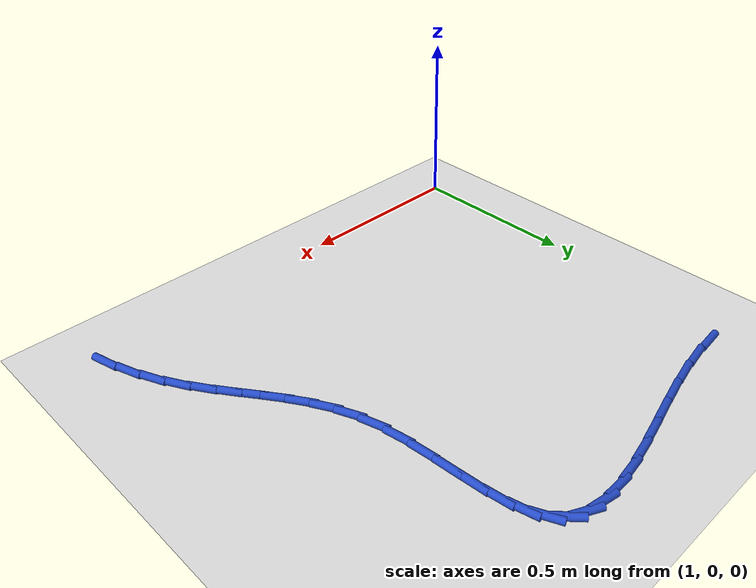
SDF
<sdf version="1.6">
 <world name="default">
  <model name="ground_plane">
   <static>1</static>
   <link name="link">
    <collision name="collision">
     <geometry><plane><normal>0 0 1</normal><size>100 100</size></plane></geometry>
     <surface><friction><ode><mu>100</mu><mu2>50</mu2></ode></friction></surface>
    </collision>
    <visual name="visual">
     <cast_shadows>0</cast_shadows>
     <geometry><plane><normal>0 0 1</normal><size>100 100</size></plane></geometry>
     <material>
      <script><uri>file://media/materials/scripts/gazebo.material</uri><name>Gazebo/WhiteGlow</name></script>
     </material>
    </visual>
   </link>
  </model>
  <model name="line">
   <link name="link_29">
    <pose>1.0898396294880066 1.0580575280648166 0.01 0 1.57 0.08945650275717984</pose>
    <collision name="collision">
     <geometry><cylinder><radius>0.01</radius><length>0.08</length></cylinder></geometry>
    </collision>
    <visual name="visual">
     <material>
      <script><name>Gazebo/Blue</name><uri>file://media/materials/scripts/gazebo.material</uri></script>
     </material>
     <geometry><cylinder><radius>0.01</radius><length>0.08</length></cylinder></geometry>
    </visual>
   </link>
   <link name="link_30">
    <pose>1.1659823152441489 1.0648872142801495 0.01 0 1.57 0.15927276681947872</pose>
    <collision name="collision">
     <geometry><cylinder><radius>0.01</radius><length>0.08</length></cylinder></geometry>
    </collision>
    <visual name="visual">
     <material>
      <script><name>Gazebo/Blue</name><uri>file://media/materials/scripts/gazebo.material</uri></script>
     </material>
     <geometry><cylinder><radius>0.01</radius><length>0.08</length></cylinder></geometry>
    </visual>
   </link>
   <link name="link_31">
    <pose>1.242744580711116 1.0772177960862384 0.01 0 1.57 0.20689623393677498</pose>
    <collision name="collision">
     <geometry><cylinder><radius>0.01</radius><length>0.08</length></cylinder></geometry>
    </collision>
    <visual name="visual">
     <material>
      <script><name>Gazebo/Blue</name><uri>file://media/materials/scripts/gazebo.material</uri></script>
     </material>
     <geometry><cylinder><radius>0.01</radius><length>0.08</length></cylinder></geometry>
    </visual>
   </link>
   <link name="link_32">
    <pose>1.319147715810594 1.0932547996184019 0.01 0 1.57 0.23470440179005142</pose>
    <collision name="collision">
     <geometry><cylinder><radius>0.01</radius><length>0.08</length></cylinder></geometry>
    </collision>
    <visual name="visual">
     <material>
      <script><name>Gazebo/Blue</name><uri>file://media/materials/scripts/gazebo.material</uri></script>
     </material>
     <geometry><cylinder><radius>0.01</radius><length>0.08</length></cylinder></geometry>
    </visual>
   </link>
   <link name="link_33">
    <pose>1.3942130104642674 1.1112037510119592 0.01 0 1.57 0.24341573041456407</pose>
    <collision name="collision">
     <geometry><cylinder><radius>0.01</radius><length>0.08</length></cylinder></geometry>
    </collision>
    <visual name="visual">
     <material>
      <script><name>Gazebo/Blue</name><uri>file://media/materials/scripts/gazebo.material</uri></script>
     </material>
     <geometry><cylinder><radius>0.01</radius><length>0.08</length></cylinder></geometry>
    </visual>
   </link>
   <link name="link_34">
    <pose>1.466961754593823 1.1292701764022304 0.01 0 1.57 0.23173763907962056</pose>
    <collision name="collision">
     <geometry><cylinder><radius>0.01</radius><length>0.08</length></cylinder></geometry>
    </collision>
    <visual name="visual">
     <material>
      <script><name>Gazebo/Blue</name><uri>file://media/materials/scripts/gazebo.material</uri></script>
     </material>
     <geometry><cylinder><radius>0.01</radius><length>0.08</length></cylinder></geometry>
    </visual>
   </link>
   <link name="link_35">
    <pose>1.5364152381209453 1.1456596019245344 0.01 0 1.57 0.19565492733869666</pose>
    <collision name="collision">
     <geometry><cylinder><radius>0.01</radius><length>0.08</length></cylinder></geometry>
    </collision>
    <visual name="visual">
     <material>
      <script><name>Gazebo/Blue</name><uri>file://media/materials/scripts/gazebo.material</uri></script>
     </material>
     <geometry><cylinder><radius>0.01</radius><length>0.08</length></cylinder></geometry>
    </visual>
   </link>
   <link name="link_36">
    <pose>1.6015947509673198 1.1585775537141907 0.01 0 1.57 0.12700185696655766</pose>
    <collision name="collision">
     <geometry><cylinder><radius>0.01</radius><length>0.08</length></cylinder></geometry>
    </collision>
    <visual name="visual">
     <material>
      <script><name>Gazebo/Blue</name><uri>file://media/materials/scripts/gazebo.material</uri></script>
     </material>
     <geometry><cylinder><radius>0.01</radius><length>0.08</length></cylinder></geometry>
    </visual>
   </link>
   <link name="link_37">
    <pose>1.661521583054633 1.166229557906519 0.01 0 1.57 0.01101692773833896</pose>
    <collision name="collision">
     <geometry><cylinder><radius>0.01</radius><length>0.08</length></cylinder></geometry>
    </collision>
    <visual name="visual">
     <material>
      <script><name>Gazebo/Blue</name><uri>file://media/materials/scripts/gazebo.material</uri></script>
     </material>
     <geometry><cylinder><radius>0.01</radius><length>0.08</length></cylinder></geometry>
    </visual>
   </link>
   <link name="link_38">
    <pose>1.71521702430457 1.1668211406368385 0.01 0 1.57 -0.17592402922138692</pose>
    <collision name="collision">
     <geometry><cylinder><radius>0.01</radius><length>0.08</length></cylinder></geometry>
    </collision>
    <visual name="visual">
     <material>
      <script><name>Gazebo/Blue</name><uri>file://media/materials/scripts/gazebo.material</uri></script>
     </material>
     <geometry><cylinder><radius>0.01</radius><length>0.08</length></cylinder></geometry>
    </visual>
   </link>
   <link name="link_39">
    <pose>1.7617023646388166 1.1585578280404687 0.01 0 1.57 -0.45871427263730696</pose>
    <collision name="collision">
     <geometry><cylinder><radius>0.01</radius><length>0.08</length></cylinder></geometry>
    </collision>
    <visual name="visual">
     <material>
      <script><name>Gazebo/Blue</name><uri>file://media/materials/scripts/gazebo.material</uri></script>
     </material>
     <geometry><cylinder><radius>0.01</radius><length>0.08</length></cylinder></geometry>
    </visual>
   </link>
   <link name="link_40">
    <pose>1.7999988939790574 1.139645146252729 0.01 0 1.57 -0.8220205050717652</pose>
    <collision name="collision">
     <geometry><cylinder><radius>0.01</radius><length>0.08</length></cylinder></geometry>
    </collision>
    <visual name="visual">
     <material>
      <script><name>Gazebo/Blue</name><uri>file://media/materials/scripts/gazebo.material</uri></script>
     </material>
     <geometry><cylinder><radius>0.01</radius><length>0.08</length></cylinder></geometry>
    </visual>
   </link>
   <link name="link_41">
    <pose>1.829132758841447 1.1082952329953413 0.01 0 1.57 -1.1477224350358073</pose>
    <collision name="collision">
     <geometry><cylinder><radius>0.01</radius><length>0.08</length></cylinder></geometry>
    </collision>
    <visual name="visual">
     <material>
      <script><name>Gazebo/Blue</name><uri>file://media/materials/scripts/gazebo.material</uri></script>
     </material>
     <geometry><cylinder><radius>0.01</radius><length>0.08</length></cylinder></geometry>
    </visual>
   </link>
   <link name="link_42">
    <pose>1.8490746113967746 1.0640060407280252 0.01 0 1.57 -1.3420202473962175</pose>
    <collision name="collision">
     <geometry><cylinder><radius>0.01</radius><length>0.08</length></cylinder></geometry>
    </collision>
    <visual name="visual">
     <material>
      <script><name>Gazebo/Blue</name><uri>file://media/materials/scripts/gazebo.material</uri></script>
     </material>
     <geometry><cylinder><radius>0.01</radius><length>0.08</length></cylinder></geometry>
    </visual>
   </link>
   <link name="link_43">
    <pose>1.8618620906546257 1.009089440628217 0.01 0 1.57 -1.4450818602307938</pose>
    <collision name="collision">
     <geometry><cylinder><radius>0.01</radius><length>0.08</length></cylinder></geometry>
    </collision>
    <visual name="visual">
     <material>
      <script><name>Gazebo/Blue</name><uri>file://media/materials/scripts/gazebo.material</uri></script>
     </material>
     <geometry><cylinder><radius>0.01</radius><length>0.08</length></cylinder></geometry>
    </visual>
   </link>
   <link name="link_44">
    <pose>1.8698063669712677 0.9462296792372724 0.01 0 1.57 -1.4915097321290938</pose>
    <collision name="collision">
     <geometry><cylinder><radius>0.01</radius><length>0.08</length></cylinder></geometry>
    </collision>
    <visual name="visual">
     <material>
      <script><name>Gazebo/Blue</name><uri>file://media/materials/scripts/gazebo.material</uri></script>
     </material>
     <geometry><cylinder><radius>0.01</radius><length>0.08</length></cylinder></geometry>
    </visual>
   </link>
   <link name="link_45">
    <pose>1.875218610702967 0.8781110030965447 0.01 0 1.57 -1.4974926838573743</pose>
    <collision name="collision">
     <geometry><cylinder><radius>0.01</radius><length>0.08</length></cylinder></geometry>
    </collision>
    <visual name="visual">
     <material>
      <script><name>Gazebo/Blue</name><uri>file://media/materials/scripts/gazebo.material</uri></script>
     </material>
     <geometry><cylinder><radius>0.01</radius><length>0.08</length></cylinder></geometry>
    </visual>
   </link>
   <link name="link_46">
    <pose>1.8804099922059918 0.8074176587473899 0.01 0 1.57 -1.4679961886820458</pose>
    <collision name="collision">
     <geometry><cylinder><radius>0.01</radius><length>0.08</length></cylinder></geometry>
    </collision>
    <visual name="visual">
     <material>
      <script><name>Gazebo/Blue</name><uri>file://media/materials/scripts/gazebo.material</uri></script>
     </material>
     <geometry><cylinder><radius>0.01</radius><length>0.08</length></cylinder></geometry>
    </visual>
   </link>
   <link name="link_47">
    <pose>1.8876916818366085 0.7368338927311612 0.01 0 1.57 -1.4001292024344423</pose>
    <collision name="collision">
     <geometry><cylinder><radius>0.01</radius><length>0.08</length></cylinder></geometry>
    </collision>
    <visual name="visual">
     <material>
      <script><name>Gazebo/Blue</name><uri>file://media/materials/scripts/gazebo.material</uri></script>
     </material>
     <geometry><cylinder><radius>0.01</radius><length>0.08</length></cylinder></geometry>
    </visual>
   </link>
   <link name="link_48">
    <pose>1.8993748499510839 0.6690439515892135 0.01 0 1.57 -1.2893749430953638</pose>
    <collision name="collision">
     <geometry><cylinder><radius>0.01</radius><length>0.08</length></cylinder></geometry>
    </collision>
    <visual name="visual">
     <material>
      <script><name>Gazebo/Blue</name><uri>file://media/materials/scripts/gazebo.material</uri></script>
     </material>
     <geometry><cylinder><radius>0.01</radius><length>0.08</length></cylinder></geometry>
    </visual>
   </link>
   <link name="link_49">
    <pose>1.917481660217448 0.6064109727488368 0.01 0 1.57 -1.1716585660698366</pose>
    <collision name="collision">
     <geometry><cylinder><radius>0.01</radius><length>0.08</length></cylinder></geometry>
    </collision>
    <visual name="visual">
     <material>
      <script><name>Gazebo/Blue</name><uri>file://media/materials/scripts/gazebo.material</uri></script>
     </material>
     <geometry><cylinder><radius>0.01</radius><length>0.08</length></cylinder></geometry>
    </visual>
   </link>
   <link name="link_50">
    <pose>1.9417823377502854 0.5487960131552543 0.01 0 1.57 -1.0742725456942517</pose>
    <collision name="collision">
     <geometry><cylinder><radius>0.01</radius><length>0.08</length></cylinder></geometry>
    </collision>
    <visual name="visual">
     <material>
      <script><name>Gazebo/Blue</name><uri>file://media/materials/scripts/gazebo.material</uri></script>
     </material>
     <geometry><cylinder><radius>0.01</radius><length>0.08</length></cylinder></geometry>
    </visual>
   </link>
   <link name="link_51">
    <pose>1.970990534515973 0.49488619405817313 0.01 0 1.57 -1.0035826377056312</pose>
    <collision name="collision">
     <geometry><cylinder><radius>0.01</radius><length>0.08</length></cylinder></geometry>
    </collision>
    <visual name="visual">
     <material>
      <script><name>Gazebo/Blue</name><uri>file://media/materials/scripts/gazebo.material</uri></script>
     </material>
     <geometry><cylinder><radius>0.01</radius><length>0.08</length></cylinder></geometry>
    </visual>
   </link>
   <link name="link_52">
    <pose>2.0038138181001646 0.4433618764827645 0.01 0 1.57 -0.9624015479755181</pose>
    <collision name="collision">
     <geometry><cylinder><radius>0.01</radius><length>0.08</length></cylinder></geometry>
    </collision>
    <visual name="visual">
     <material>
      <script><name>Gazebo/Blue</name><uri>file://media/materials/scripts/gazebo.material</uri></script>
     </material>
     <geometry><cylinder><radius>0.01</radius><length>0.08</length></cylinder></geometry>
    </visual>
   </link>
   <link name="link_53">
    <pose>2.0389597560885133 0.39290342145420176 0.01 0 1.57 -0.951159003437596</pose>
    <collision name="collision">
     <geometry><cylinder><radius>0.01</radius><length>0.08</length></cylinder></geometry>
    </collision>
    <visual name="visual">
     <material>
      <script><name>Gazebo/Blue</name><uri>file://media/materials/scripts/gazebo.material</uri></script>
     </material>
     <geometry><cylinder><radius>0.01</radius><length>0.08</length></cylinder></geometry>
    </visual>
   </link>
   <link name="link_54">
    <pose>2.075135916066671 0.3421911899976561 0.01 0 1.57 -0.9689303126985507</pose>
    <collision name="collision">
     <geometry><cylinder><radius>0.01</radius><length>0.08</length></cylinder></geometry>
    </collision>
    <visual name="visual">
     <material>
      <script><name>Gazebo/Blue</name><uri>file://media/materials/scripts/gazebo.material</uri></script>
     </material>
     <geometry><cylinder><radius>0.01</radius><length>0.08</length></cylinder></geometry>
    </visual>
   </link>
   <link name="link_55">
    <pose>2.1110498656202905 0.2899055431383006 0.01 0 1.57 -1.0138587989336334</pose>
    <collision name="collision">
     <geometry><cylinder><radius>0.01</radius><length>0.08</length></cylinder></geometry>
    </collision>
    <visual name="visual">
     <material>
      <script><name>Gazebo/Blue</name><uri>file://media/materials/scripts/gazebo.material</uri></script>
     </material>
     <geometry><cylinder><radius>0.01</radius><length>0.08</length></cylinder></geometry>
    </visual>
   </link>
   <link name="link_56">
    <pose>2.1454091723350257 0.23472684190130683 0.01 0 1.57 -1.0829805122906602</pose>
    <collision name="collision">
     <geometry><cylinder><radius>0.01</radius><length>0.08</length></cylinder></geometry>
    </collision>
    <visual name="visual">
     <material>
      <script><name>Gazebo/Blue</name><uri>file://media/materials/scripts/gazebo.material</uri></script>
     </material>
     <geometry><cylinder><radius>0.01</radius><length>0.08</length></cylinder></geometry>
    </visual>
   </link>
   <link name="link_57">
    <pose>2.176921403796527 0.17533544731184753 0.01 0 1.57 -1.1686858933519875</pose>
    <collision name="collision">
     <geometry><cylinder><radius>0.01</radius><length>0.08</length></cylinder></geometry>
    </collision>
    <visual name="visual">
     <material>
      <script><name>Gazebo/Blue</name><uri>file://media/materials/scripts/gazebo.material</uri></script>
     </material>
     <geometry><cylinder><radius>0.01</radius><length>0.08</length></cylinder></geometry>
    </visual>
   </link>
   <link name="link_58">
    <pose>2.2044196943434287 0.11067666154692074 0.01 0 1.57 -1.2500405806699968</pose>
    <collision name="collision">
     <geometry><cylinder><radius>0.01</radius><length>0.08</length></cylinder></geometry>
    </collision>
    <visual name="visual">
     <material>
      <script><name>Gazebo/Blue</name><uri>file://media/materials/scripts/gazebo.material</uri></script>
     </material>
     <geometry><cylinder><radius>0.01</radius><length>0.08</length></cylinder></geometry>
    </visual>
   </link>
   <link name="link_59">
    <pose>2.2274804959481327 0.04126415918618202 0.01 0 1.57 -1.323206425330847</pose>
    <collision name="collision">
     <geometry><cylinder><radius>0.01</radius><length>0.08</length></cylinder></geometry>
    </collision>
    <visual name="visual">
     <material>
      <script><name>Gazebo/Blue</name><uri>file://media/materials/scripts/gazebo.material</uri></script>
     </material>
     <geometry><cylinder><radius>0.01</radius><length>0.08</length></cylinder></geometry>
    </visual>
   </link>
  </model>
 </world>
</sdf>
